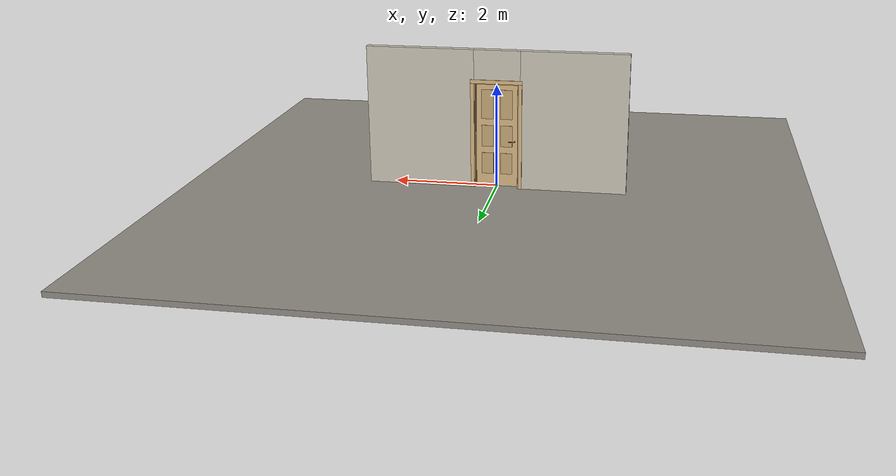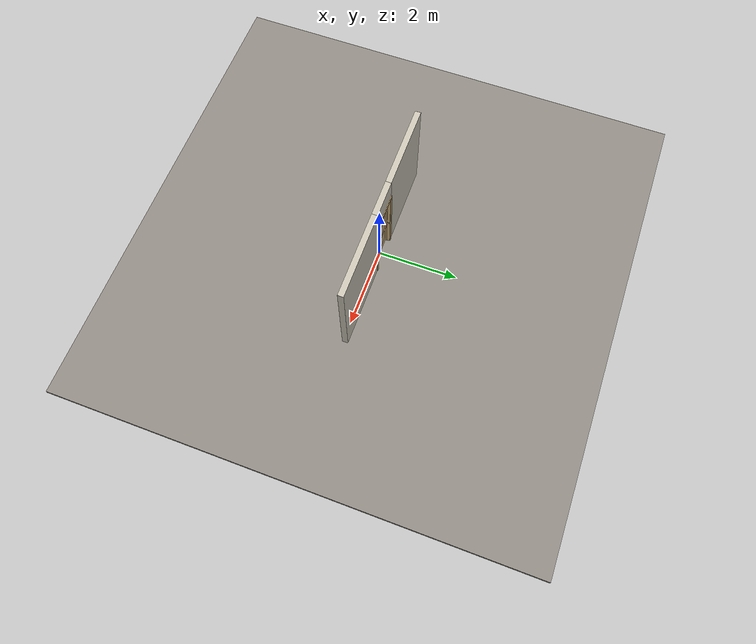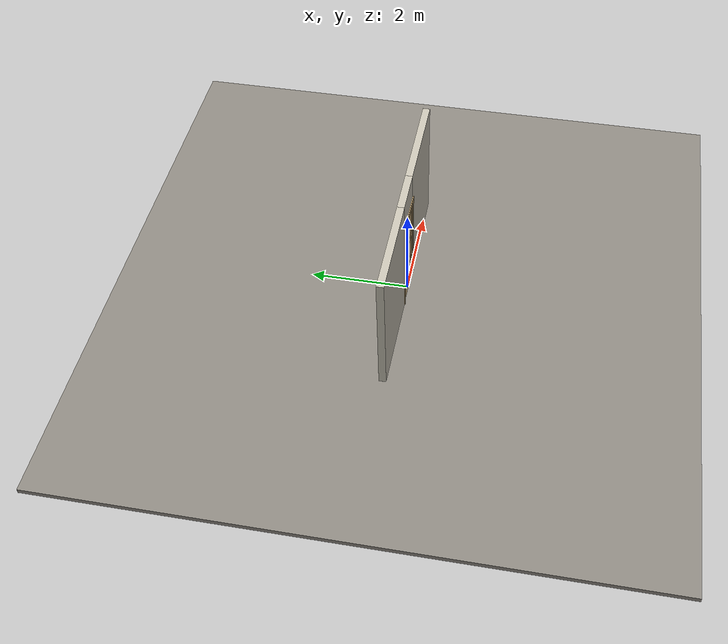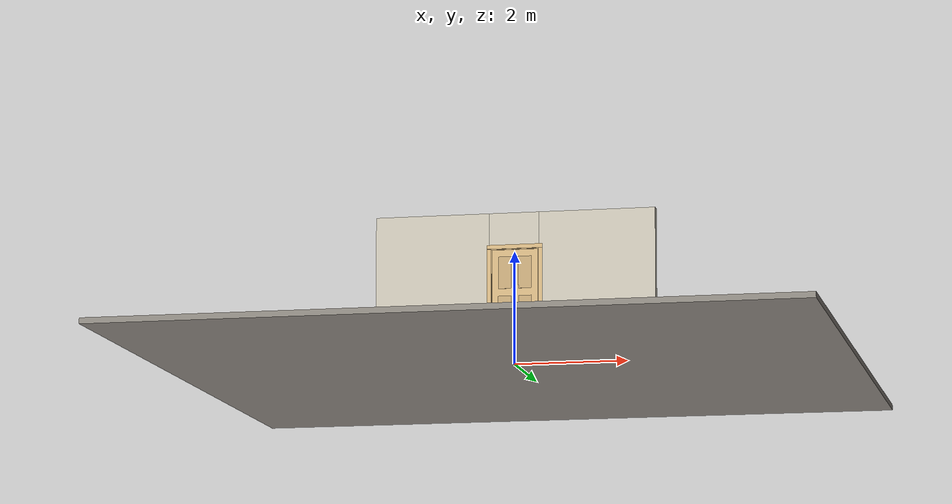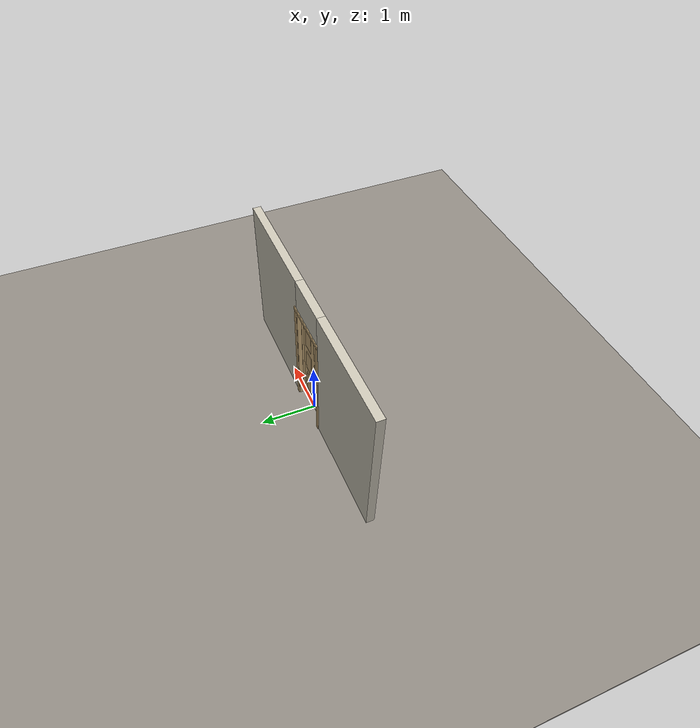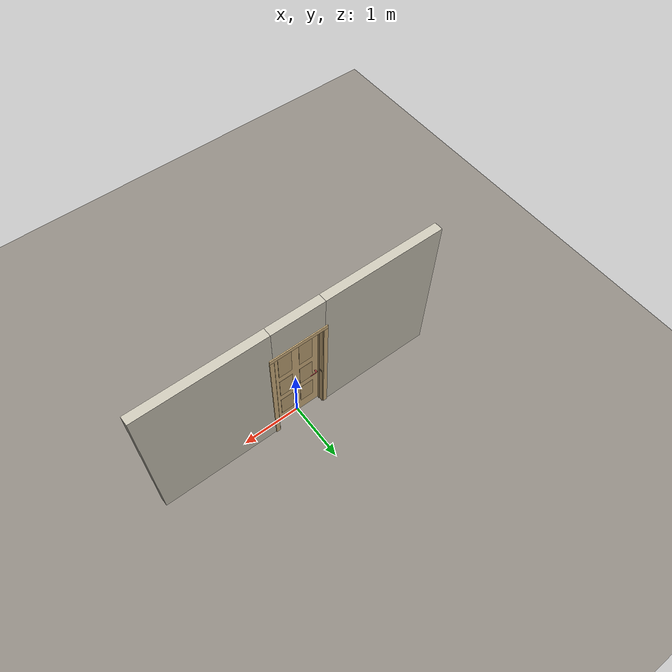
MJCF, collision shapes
<?xml version="1.0" ?>
<mujoco model="db0756_swing_single_full">
  <compiler angle="radian" meshdir="../../hardware" texturedir="../../textures" autolimits="true" inertiafromgeom="false"/>
  <option timestep="0.002" integrator="implicitfast" cone="elliptic" impratio="10" noslip_iterations="3">
    <flag multiccd="enable"/>
  </option>
  <size memory="16M"/>
  <default>
    <geom condim="4" solref="0.005 1" solimp="0.95 0.99 0.001"/>
    <joint solreflimit="0.005 1" solimplimit="0.95 0.99 0.001"/>
    <tendon solreflimit="0.005 1"/>
    <equality solref="0.002 1"/>
  </default>
  <visual>
    <headlight ambient="0.4 0.4 0.4" diffuse="0.7 0.7 0.7" specular="0.2 0.2 0.2"/>
    <quality shadowsize="4096"/>
    <map znear="0.01" zfar="60"/>
  </visual>
  <asset>
    <mesh name="coat_hook_d622d37ad0" file="coat_hook_d622d37ad0.obj"/>
    <mesh name="hinge_96510cf394" file="hinge_96510cf394.obj"/>
    <mesh name="hinge_jamb_7fd4ca52b2" file="hinge_jamb_7fd4ca52b2.obj"/>
    <mesh name="lever_57205841c3" file="lever_57205841c3.obj"/>
    <material name="mat_floor" rgba="0.55 0.53 0.5 1" specular="0.2" shininess="0.15" reflectance="0"/>
    <material name="mat_wall" rgba="0.78 0.76 0.7 1" specular="0.2" shininess="0.1" reflectance="0"/>
    <material name="mat_leaf" rgba="0.82 0.7 0.5 1" specular="0.2" shininess="0.45" reflectance="0"/>
    <material name="mat_leaf_panel" rgba="0.754 0.644 0.46 1" specular="0.2" shininess="0.45" reflectance="0"/>
    <material name="mat_hinge" rgba="0.65 0.66 0.68 1" specular="0.74" shininess="0.5" reflectance="0.36"/>
    <material name="mat_op_black_matte_metal" rgba="0.05 0.05 0.05 1" specular="0.38" shininess="0.3" reflectance="0.12"/>
    <material name="mat_trim" rgba="0.85 0.66 0.3 1" specular="0.8" shininess="0.75" reflectance="0.4"/>
    <material name="mat_bolt" rgba="0.85 0.66 0.3 1" specular="0.8" shininess="0.75" reflectance="0.4"/>
    <material name="mat_frame" rgba="0.82 0.7 0.5 1" specular="0.2" shininess="0.45" reflectance="0"/>
    <material name="mat_seal" rgba="0.1 0.1 0.1 1" specular="0.2" shininess="0.1" reflectance="0"/>
    <material name="mat_hook" rgba="0.9 0.9 0.92 1" specular="0.8" shininess="0.9" reflectance="0.4"/>
    <texture name="skybox" type="skybox" builtin="gradient" rgb1="0.6 0.7 0.85" rgb2="0.9 0.92 0.95" width="256" height="256"/>
  </asset>
  <worldbody>
    <light name="sun" pos="1.5 -2.5 4" dir="-0.3 0.5 -0.8" directional="true" diffuse="0.8 0.8 0.8" specular="0.3 0.3 0.3" castshadow="true"/>
    <light name="fill" pos="-1.5 2.5 3" dir="0.3 -0.5 -0.7" directional="true" diffuse="0.35 0.35 0.4" castshadow="false"/>
    <camera name="robot_view" pos="0 -2.494187 1.734312" xyaxes="1 0 0 0 0.26963 0.962964" fovy="52"/>
    <camera name="far_view" pos="0 2.590187 1.734312" xyaxes="-1 0 0 0 -0.26963 0.962964" fovy="52"/>
    <camera name="iso" pos="-1.932062 -2.087438 2.141063" xyaxes="0.741536 -0.670913 0 0.242917 0.268487 0.932151" fovy="46"/>
    <camera name="detail_handle" pos="-0.07 -0.8725 1.194" xyaxes="0.97561 0.219512 0 -0.070934 0.315262 0.94635" fovy="38"/>
    <geom name="floor" type="box" size="6 6 0.05" pos="0 0 -0.05" material="mat_floor" group="0" contype="1" conaffinity="1" friction="0.8 0.005 0.0001" density="2400"/>
    <geom name="wall_left" type="box" size="1.0205 0.0725 1.35" pos="-1.4795 0.048 1.35" material="mat_wall" group="0" contype="1" conaffinity="1" friction="0.6 0.005 0.0001" density="800"/>
    <geom name="wall_right" type="box" size="1.0355 0.0725 1.35" pos="1.4645 0.048 1.35" material="mat_wall" group="0" contype="1" conaffinity="1" friction="0.6 0.005 0.0001" density="800"/>
    <geom name="wall_header" type="box" size="0.444 0.0725 0.303" pos="-0.015 0.048 2.397" material="mat_wall" group="0" contype="1" conaffinity="1" friction="0.6 0.005 0.0001" density="800"/>
    <geom name="hinge_0_jamb" type="mesh" mesh="hinge_jamb_7fd4ca52b2" pos="0.407 -0.0245 0.259" quat="0 0 1 0" material="mat_hinge" group="1" contype="0" conaffinity="0" density="7850"/>
    <geom name="hinge_1_jamb" type="mesh" mesh="hinge_jamb_7fd4ca52b2" pos="0.407 -0.0245 1.025" quat="0 0 1 0" material="mat_hinge" group="1" contype="0" conaffinity="0" density="7850"/>
    <geom name="hinge_2_jamb" type="mesh" mesh="hinge_jamb_7fd4ca52b2" pos="0.407 -0.0245 1.861" quat="0 0 1 0" material="mat_hinge" group="1" contype="0" conaffinity="0" density="7850"/>
    <geom name="jamb_hinge" type="box" size="0.0095 0.0725 1.0225" pos="0.4195 0.048 1.0225" material="mat_frame" group="0" contype="1" conaffinity="1" friction="0.6 0.005 0.0001" density="400"/>
    <geom name="strike_914_wall_n" type="box" size="0.0245 0.056325 0.0167" pos="-0.4345 0.064175 0.914" material="mat_frame" group="0" contype="1" conaffinity="1" friction="0.6 0.005 0.0001" density="400"/>
    <geom name="strike_914_wall_p" type="box" size="0.0245 0.008 0.0167" pos="-0.4345 -0.01585 0.914" material="mat_frame" group="0" contype="1" conaffinity="1" friction="0.6 0.005 0.0001" density="400"/>
    <geom name="strike_914_ramp" type="box" size="0.0245 0.01649 0.0167" pos="-0.439136 -0.028673 0.914" quat="0.977148 0 0 -0.212558" material="mat_frame" group="0" contype="1" conaffinity="1" friction="0.12 0.005 0.0001" density="400"/>
    <geom name="strike_914_back" type="box" size="0.01615 0.00785 0.0167" pos="-0.44285 0 0.914" material="mat_frame" group="0" contype="1" conaffinity="1" friction="0.6 0.005 0.0001" density="400"/>
    <geom name="jamb_strike_0" type="box" size="0.0245 0.0725 0.44865" pos="-0.4345 0.048 0.44865" material="mat_frame" group="0" contype="1" conaffinity="1" friction="0.6 0.005 0.0001" density="400"/>
    <geom name="jamb_strike_1" type="box" size="0.0245 0.0725 0.55715" pos="-0.4345 0.048 1.48785" material="mat_frame" group="0" contype="1" conaffinity="1" friction="0.6 0.005 0.0001" density="400"/>
    <geom name="jamb_head" type="box" size="0.444 0.0725 0.0095" pos="-0.015 0.048 2.0545" material="mat_frame" group="0" contype="1" conaffinity="1" friction="0.6 0.005 0.0001" density="400"/>
    <geom name="head_stud" type="box" size="0.444 0.0725 0.015" pos="-0.015 0.048 2.079" material="mat_wall" group="0" contype="1" conaffinity="1" friction="0.6 0.005 0.0001" density="500"/>
    <geom name="stop_hinge" type="box" size="0.0055 0.016 1.0225" pos="0.4045 0.034 1.0225" material="mat_frame" group="0" contype="1" conaffinity="1" friction="0.6 0.005 0.0001" density="400"/>
    <geom name="stop_strike" type="box" size="0.0055 0.016 1.0225" pos="-0.4045 0.034 1.0225" material="mat_frame" group="0" contype="1" conaffinity="1" friction="0.6 0.005 0.0001" density="400"/>
    <geom name="stop_head" type="box" size="0.41 0.016 0.0055" pos="0 0.034 2.0395" material="mat_frame" group="0" contype="1" conaffinity="1" friction="0.6 0.005 0.0001" density="400"/>
    <geom name="seal_hinge" type="box" size="0.004 0.0015 1.0225" pos="0.407 0.019 1.0225" material="mat_seal" group="1" contype="0" conaffinity="0" density="1100"/>
    <geom name="seal_strike" type="box" size="0.004 0.0015 1.0225" pos="-0.407 0.019 1.0225" material="mat_seal" group="1" contype="0" conaffinity="0" density="1100"/>
    <geom name="seal_head" type="box" size="0.39 0.0015 0.008" pos="0 0.019 2.033" material="mat_seal" group="1" contype="0" conaffinity="0" density="1100"/>
    <geom name="casing_l_n" type="box" size="0.035 0.008 1.032" pos="-0.459 -0.0325 1.0225" material="mat_frame" group="2" contype="0" conaffinity="0" density="400"/>
    <geom name="casing_r_n" type="box" size="0.035 0.008 1.032" pos="0.459 -0.0325 1.0225" material="mat_frame" group="2" contype="0" conaffinity="0" density="400"/>
    <geom name="casing_h_n" type="box" size="0.494 0.008 0.035" pos="0 -0.0325 2.094" material="mat_frame" group="2" contype="0" conaffinity="0" density="400"/>
    <geom name="casing_l_p" type="box" size="0.035 0.008 1.032" pos="-0.459 0.1285 1.0225" material="mat_frame" group="2" contype="0" conaffinity="0" density="400"/>
    <geom name="casing_r_p" type="box" size="0.035 0.008 1.032" pos="0.459 0.1285 1.0225" material="mat_frame" group="2" contype="0" conaffinity="0" density="400"/>
    <geom name="casing_h_p" type="box" size="0.494 0.008 0.035" pos="0 0.1285 2.094" material="mat_frame" group="2" contype="0" conaffinity="0" density="400"/>
    <site name="approach_point" pos="0 -1.5 0" quat="1 0 0 0" size="0.05" rgba="0.2 0.9 0.2 0.5" group="4"/>
    <site name="goal_point" pos="0 1.5 0" quat="1 0 0 0" size="0.05" rgba="0.2 0.9 0.2 0.5" group="4"/>
    <site name="door_plane_center" pos="0 0 1.0225" quat="1 0 0 0" size="0.02" rgba="0.2 0.9 0.2 0.5" group="4"/>
    <body name="leaf" pos="0.41 0 0">
      <inertial pos="-0.40266 -0.000121 1.027289" mass="23.928351" quat="0.50024 -0.499457 0.500665 0.499637" diaginertia="1.363191619 8.273741817 9.631495174"/>
      <joint name="leaf_hinge" type="hinge" axis="0 0 1" pos="-0.003 -0.0245 0" limited="true" range="0 2.268928" solreflimit="0.02 1" damping="0.210326" frictionloss="7.258463" armature="0.02"/>
      <geom name="leaf_slab" type="box" size="0.4065 0.0175 1.016" pos="-0.4095 0 1.025" material="mat_leaf" group="0" contype="1" conaffinity="1" friction="0.35 0.005 0.0001" density="1"/>
      <geom name="leaf_panel_0_n" type="box" size="0.11575 0.003 0.209032" pos="-0.22875 -0.0205 0.461552" material="mat_leaf_panel" group="1" contype="0" conaffinity="0" density="1"/>
      <geom name="leaf_panel_0_p" type="box" size="0.11575 0.003 0.209032" pos="-0.22875 0.0205 0.461552" material="mat_leaf_panel" group="1" contype="0" conaffinity="0" density="1"/>
      <geom name="leaf_panel_1_n" type="box" size="0.11575 0.003 0.209032" pos="-0.59025 -0.0205 0.461552" material="mat_leaf_panel" group="1" contype="0" conaffinity="0" density="1"/>
      <geom name="leaf_panel_1_p" type="box" size="0.11575 0.003 0.209032" pos="-0.59025 0.0205 0.461552" material="mat_leaf_panel" group="1" contype="0" conaffinity="0" density="1"/>
      <geom name="leaf_panel_2_n" type="box" size="0.11575 0.003 0.209032" pos="-0.22875 -0.0205 1.009616" material="mat_leaf_panel" group="1" contype="0" conaffinity="0" density="1"/>
      <geom name="leaf_panel_2_p" type="box" size="0.11575 0.003 0.209032" pos="-0.22875 0.0205 1.009616" material="mat_leaf_panel" group="1" contype="0" conaffinity="0" density="1"/>
      <geom name="leaf_panel_3_n" type="box" size="0.11575 0.003 0.209032" pos="-0.59025 -0.0205 1.009616" material="mat_leaf_panel" group="1" contype="0" conaffinity="0" density="1"/>
      <geom name="leaf_panel_3_p" type="box" size="0.11575 0.003 0.209032" pos="-0.59025 0.0205 1.009616" material="mat_leaf_panel" group="1" contype="0" conaffinity="0" density="1"/>
      <geom name="leaf_panel_4_n" type="box" size="0.11575 0.003 0.285376" pos="-0.22875 -0.0205 1.634024" material="mat_leaf_panel" group="1" contype="0" conaffinity="0" density="1"/>
      <geom name="leaf_panel_4_p" type="box" size="0.11575 0.003 0.285376" pos="-0.22875 0.0205 1.634024" material="mat_leaf_panel" group="1" contype="0" conaffinity="0" density="1"/>
      <geom name="leaf_panel_5_n" type="box" size="0.11575 0.003 0.285376" pos="-0.59025 -0.0205 1.634024" material="mat_leaf_panel" group="1" contype="0" conaffinity="0" density="1"/>
      <geom name="leaf_panel_5_p" type="box" size="0.11575 0.003 0.285376" pos="-0.59025 0.0205 1.634024" material="mat_leaf_panel" group="1" contype="0" conaffinity="0" density="1"/>
      <geom name="hinge_0" type="mesh" mesh="hinge_96510cf394" pos="-0.003 -0.0245 0.259" quat="0 0 1 0" material="mat_hinge" group="1" contype="0" conaffinity="0" density="7850"/>
      <geom name="hinge_1" type="mesh" mesh="hinge_96510cf394" pos="-0.003 -0.0245 1.025" quat="0 0 1 0" material="mat_hinge" group="1" contype="0" conaffinity="0" density="7850"/>
      <geom name="hinge_2" type="mesh" mesh="hinge_96510cf394" pos="-0.003 -0.0245 1.861" quat="0 0 1 0" material="mat_hinge" group="1" contype="0" conaffinity="0" density="7850"/>
      <geom name="leaf_latch_bolt_faceplate" type="box" size="0.0006 0.01235 0.0267" pos="-0.8154 0 0.914" material="mat_bolt" group="1" contype="0" conaffinity="0" density="8500"/>
      <geom name="coat_hook" type="mesh" mesh="coat_hook_d622d37ad0" pos="-0.4095 0.0175 1.691" quat="0 0 0.707107 0.707107" material="mat_hook" group="2" contype="0" conaffinity="0" density="7000"/>
      <site name="leaf_edge_mid" pos="-0.816 0 1.016" quat="1 0 0 0" size="0.02" rgba="0.2 0.9 0.2 0.5" group="4"/>
      <body name="leaf_handle" pos="-0.756 0 0.914">
        <inertial pos="0.018609 0 0" mass="0.798454" quat="0.707107 0 0 -0.707107" diaginertia="0.001003601 0.002236545 0.003135681"/>
        <joint name="leaf_handle_hinge" type="hinge" axis="0 1 0" limited="true" range="0 0.87" damping="0.212416" frictionloss="0.042" stiffness="1" springref="-0.35" armature="0.01"/>
        <geom name="leaf_handle_spindle" type="cylinder" size="0.006 0.0255" pos="0 0 0" quat="0.707107 -0.707107 0 0" material="mat_op_black_matte_metal" group="1" contype="0" conaffinity="0" density="7850"/>
        <geom name="leaf_handle_lever_n" type="mesh" mesh="lever_57205841c3" pos="0 -0.0175 0" quat="0 0 -0.707107 0.707107" material="mat_op_black_matte_metal" group="1" contype="0" conaffinity="0" density="3000"/>
        <geom name="leaf_handle_lever_col_n" type="capsule" size="0.007 0.053" pos="0.06 -0.0725 0" quat="0.707107 0 0.707107 0" material="mat_op_black_matte_metal" group="3" contype="1" conaffinity="1" rgba="0.8 0.3 0.3 0.25" friction="0.7 0.01 0.0001" density="3000"/>
        <geom name="leaf_handle_hub_col_n" type="cylinder" size="0.012 0.022" pos="0 -0.0475 0" quat="0.707107 -0.707107 0 0" material="mat_op_black_matte_metal" group="3" contype="1" conaffinity="1" rgba="0.8 0.3 0.3 0.25" friction="0.6 0.005 0.0001" density="3000"/>
        <geom name="leaf_handle_lever_p" type="mesh" mesh="lever_57205841c3" pos="0 0.0175 0" quat="0 0 0.707107 0.707107" material="mat_op_black_matte_metal" group="1" contype="0" conaffinity="0" density="3000"/>
        <geom name="leaf_handle_lever_col_p" type="capsule" size="0.007 0.053" pos="0.06 0.0725 0" quat="0.707107 0 0.707107 0" material="mat_op_black_matte_metal" group="3" contype="1" conaffinity="1" rgba="0.8 0.3 0.3 0.25" friction="0.7 0.01 0.0001" density="3000"/>
        <geom name="leaf_handle_hub_col_p" type="cylinder" size="0.012 0.022" pos="0 0.0475 0" quat="0.707107 -0.707107 0 0" material="mat_op_black_matte_metal" group="3" contype="1" conaffinity="1" rgba="0.8 0.3 0.3 0.25" friction="0.6 0.005 0.0001" density="3000"/>
        <site name="leaf_handle_grip_n" pos="0.096 -0.0725 0" quat="1 0 0 0" size="0.012" rgba="0.2 0.9 0.2 0.5" group="4"/>
        <site name="leaf_handle_grip_p" pos="0.096 0.0725 0" quat="1 0 0 0" size="0.012" rgba="0.2 0.9 0.2 0.5" group="4"/>
      </body>
      <body name="leaf_latch_bolt" pos="-0.816 0 0.914">
        <inertial pos="0.00865 0 0" mass="0.041419" quat="0.92388 0.382683 0 0" diaginertia="0.000000798 0.000005598 0.000005598"/>
        <joint name="leaf_latch_bolt_slide" type="slide" axis="1 0 0" limited="true" range="0 0.0127" damping="2" frictionloss="0.3" stiffness="300" springref="-0.008333" armature="0.1"/>
        <geom name="leaf_latch_bolt_capsule" type="capsule" size="0.00635 0.015" pos="0.00865 0 0" quat="0.707107 0 -0.707107 0" material="mat_bolt" group="0" contype="1" conaffinity="1" friction="0.2 0.005 0.0001" density="8500"/>
      </body>
    </body>
  </worldbody>
  <tendon>
    <fixed name="leaf_latch_bolt_coupling" limited="true" range="0 10">
      <joint joint="leaf_latch_bolt_slide" coef="1"/>
      <joint joint="leaf_handle_hinge" coef="-0.015679"/>
    </fixed>
  </tendon>
  <sensor>
    <jointpos name="leaf_hinge_pos" joint="leaf_hinge"/>
    <jointvel name="leaf_hinge_vel" joint="leaf_hinge"/>
    <jointpos name="leaf_handle_hinge_pos" joint="leaf_handle_hinge"/>
    <jointvel name="leaf_handle_hinge_vel" joint="leaf_handle_hinge"/>
    <jointpos name="leaf_latch_bolt_slide_pos" joint="leaf_latch_bolt_slide"/>
    <jointvel name="leaf_latch_bolt_slide_vel" joint="leaf_latch_bolt_slide"/>
  </sensor>
</mujoco>
